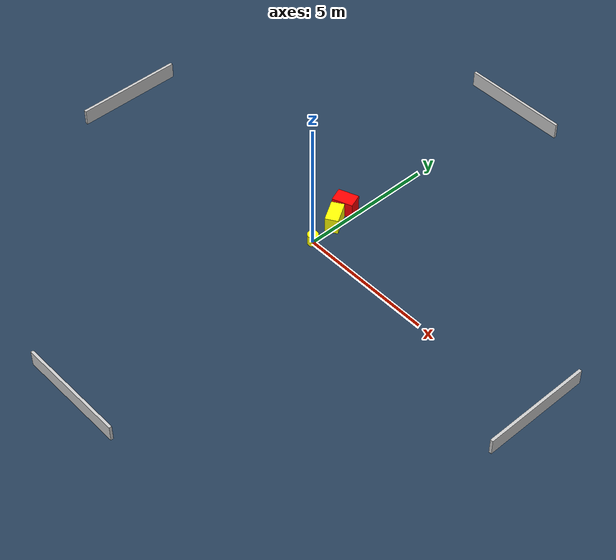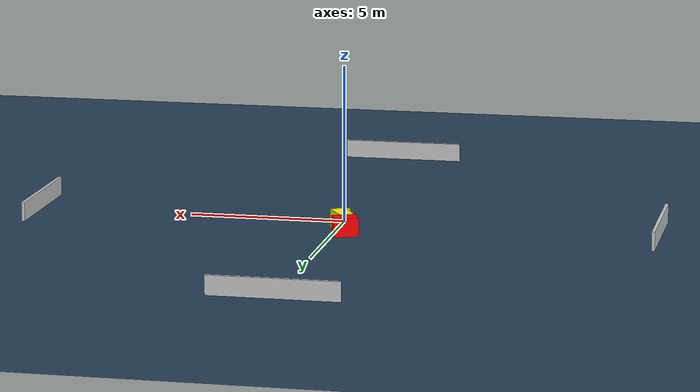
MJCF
<?xml version="1.0" ?>
<mujoco model="generated_environment">
  <option timestep="0.01" integrator="RK4" cone="elliptic"/>
  <default>
    <geom density="1"/>
  </default>
  <asset>
    <texture builtin="gradient" height="3072" name="skybox" rgb1="0.3 0.5 0.7" rgb2="0 0 0" type="skybox" width="512"/>
    <texture builtin="checker" height="300" name="groundplane" rgb1="0.2 0.3 0.4" rgb2="0.1 0.2 0.3" type="2d" width="300"/>
    <material name="groundplane" reflectance="0.2" texrepeat="5 5" texture="groundplane"/>
  </asset>
  <worldbody>
    <light dir="0 0 -1" directional="true" pos="0 0 1.5"/>
    <geom condim="3" friction="0.5 0.005 0.001" material="groundplane" name="floor" pos="0 0 0" size="0 0 0.05" type="plane"/>
    <body name="walls">
      <geom name="wall_1" condim="4" pos="-10.0 0.0 0.3" rgba="0.800000011920929 0.800000011920929 0.800000011920929 1.0" size="0.05 2.0 0.3" type="box"/>
      <geom name="wall_2" condim="4" pos="10.0 0.0 0.3" rgba="0.800000011920929 0.800000011920929 0.800000011920929 1.0" size="0.05 2.0 0.3" type="box"/>
      <geom name="wall_3" condim="4" pos="0.0 -10.0 0.3" rgba="0.800000011920929 0.800000011920929 0.800000011920929 1.0" size="2.0 0.05 0.3" type="box"/>
      <geom name="wall_4" condim="4" pos="0.0 10.0 0.3" rgba="0.800000011920929 0.800000011920929 0.800000011920929 1.0" size="2.0 0.05 0.3" type="box"/>
    </body>
    <body name="robot">
      <joint name="joint_x" type="slide" pos="0 0 0" axis="1 0 0"/>
      <joint name="joint_y" type="slide" pos="0 0 0" axis="0 1 0"/>
      <geom name="robot" type="cylinder" pos="0.0 0.0 0.2" size="0.2 0.2 0.0" mass="5.0" friction="1.0 0.005 0.0001" condim="4" rgba="1.0 1.0 0.0 1.0"/>
    </body>
    <body name="obstacle_1_movable">
      <geom name="obstacle_1_movable" condim="4" pos="-0.1556054495384684 1.1460980128650076 0.3" euler="0 0 211.74677536680298" friction="0.0 0.005 0.001" rgba="1.0 1.0 0.0 1.0" size="0.2383801928542153 0.43141633201421603 0.3" type="box" mass="0.1"/>
      <joint type="free"/>
    </body>
    <body name="obstacle_2_static">
      <geom name="obstacle_2_static" condim="4" pos="-0.40088848599689897 1.873501834966066 0.3" euler="0 0 20.574664361941434" friction="0.0 0.005 0.001" rgba="1.0 0.0 0.0 1.0" size="0.3822379164103621 0.2693689214862249 0.3" type="box"/>
    </body>
  </worldbody>
  <actuator>
    <motor name="actuator_x" joint="joint_x" gear="1" ctrlrange="-1 1"/>
    <motor name="actuator_y" joint="joint_y" gear="1" ctrlrange="-1 1"/>
  </actuator>
</mujoco>
